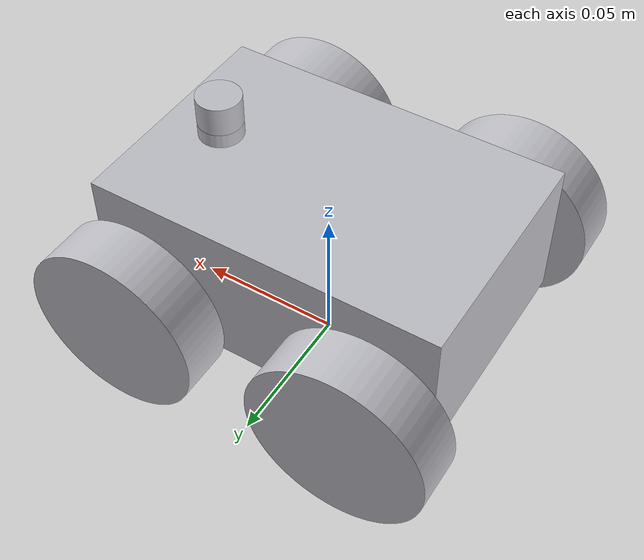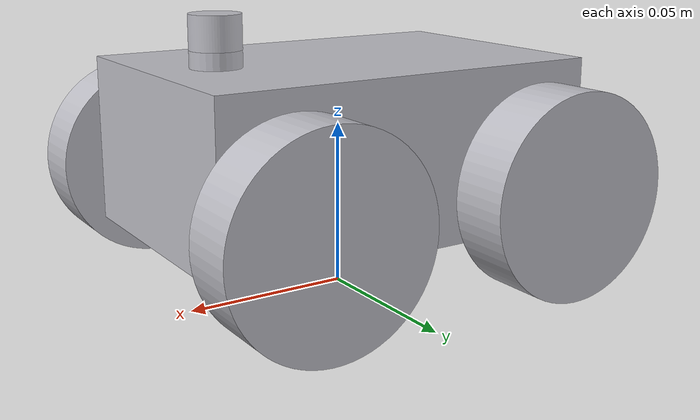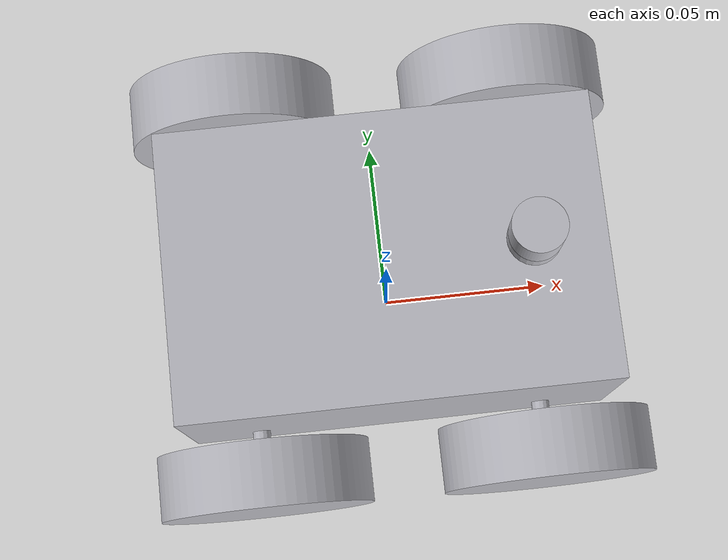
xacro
<?xml version="1.0" ?>
<robot name="test_bot" xmlns:xacro="http://www.ros.org/wiki/xacro">

<xacro:include filename="$(find test_bot_description)/urdf/materials.xacro" />
<xacro:include filename="$(find test_bot_description)/urdf/test_bot.trans" />
<xacro:include filename="$(find test_bot_description)/urdf/test_bot.gazebo" />
<link name="base_link">
  <inertial>
    <origin xyz="7.34358193300965e-05 0.0 0.04504232759030028" rpy="0 0 0"/>
    <mass value="3.7780187353218353"/>
    <inertia ixx="0.002806" iyy="0.005328" izz="0.006553" ixy="0.0" iyz="0.0" ixz="-8e-06"/>
  </inertial>
  <visual>
    <origin xyz="0 0 0" rpy="0 0 0"/>
    <geometry>
      <mesh filename="package://test_bot_description/meshes/base_link.stl" scale="0.001 0.001 0.001"/>
    </geometry>
    <material name="silver"/>
  </visual>
  <collision>
    <origin xyz="0 0 0" rpy="0 0 0"/>
    <geometry>
      <mesh filename="package://test_bot_description/meshes/base_link.stl" scale="0.001 0.001 0.001"/>
    </geometry>
  </collision>
</link>

<link name="right_back_wheel_1">
  <inertial>
    <origin xyz="-6.938893903907228e-18 0.008999999999999994 6.938893903907228e-18" rpy="0 0 0"/>
    <mass value="0.3995163377570139"/>
    <inertia ixx="0.000101" iyy="0.00018" izz="0.000101" ixy="0.0" iyz="-0.0" ixz="-0.0"/>
  </inertial>
  <visual>
    <origin xyz="0.04 -0.045 -0.035" rpy="0 0 0"/>
    <geometry>
      <mesh filename="package://test_bot_description/meshes/right_back_wheel_1.stl" scale="0.001 0.001 0.001"/>
    </geometry>
    <material name="silver"/>
  </visual>
  <collision>
    <origin xyz="0.04 -0.045 -0.035" rpy="0 0 0"/>
    <geometry>
      <mesh filename="package://test_bot_description/meshes/right_back_wheel_1.stl" scale="0.001 0.001 0.001"/>
    </geometry>
  </collision>
</link>

<link name="right_front_wheel_1">
  <inertial>
    <origin xyz="-6.938893903907228e-18 0.008999999999999994 0.0" rpy="0 0 0"/>
    <mass value="0.39951633775701406"/>
    <inertia ixx="0.000101" iyy="0.00018" izz="0.000101" ixy="-0.0" iyz="0.0" ixz="0.0"/>
  </inertial>
  <visual>
    <origin xyz="-0.04 -0.045 -0.035" rpy="0 0 0"/>
    <geometry>
      <mesh filename="package://test_bot_description/meshes/right_front_wheel_1.stl" scale="0.001 0.001 0.001"/>
    </geometry>
    <material name="silver"/>
  </visual>
  <collision>
    <origin xyz="-0.04 -0.045 -0.035" rpy="0 0 0"/>
    <geometry>
      <mesh filename="package://test_bot_description/meshes/right_front_wheel_1.stl" scale="0.001 0.001 0.001"/>
    </geometry>
  </collision>
</link>

<link name="left_front_wheel_1">
  <inertial>
    <origin xyz="-6.938893903907228e-18 -0.008999999999999994 0.0" rpy="0 0 0"/>
    <mass value="0.39951633775701406"/>
    <inertia ixx="0.000101" iyy="0.00018" izz="0.000101" ixy="0.0" iyz="0.0" ixz="0.0"/>
  </inertial>
  <visual>
    <origin xyz="-0.04 0.045 -0.035" rpy="0 0 0"/>
    <geometry>
      <mesh filename="package://test_bot_description/meshes/left_front_wheel_1.stl" scale="0.001 0.001 0.001"/>
    </geometry>
    <material name="silver"/>
  </visual>
  <collision>
    <origin xyz="-0.04 0.045 -0.035" rpy="0 0 0"/>
    <geometry>
      <mesh filename="package://test_bot_description/meshes/left_front_wheel_1.stl" scale="0.001 0.001 0.001"/>
    </geometry>
  </collision>
</link>

<link name="left_back_wheel_1">
  <inertial>
    <origin xyz="-6.938893903907228e-18 -0.008999999999999994 6.938893903907228e-18" rpy="0 0 0"/>
    <mass value="0.3995163377570139"/>
    <inertia ixx="0.000101" iyy="0.00018" izz="0.000101" ixy="-0.0" iyz="0.0" ixz="-0.0"/>
  </inertial>
  <visual>
    <origin xyz="0.04 0.045 -0.035" rpy="0 0 0"/>
    <geometry>
      <mesh filename="package://test_bot_description/meshes/left_back_wheel_1.stl" scale="0.001 0.001 0.001"/>
    </geometry>
    <material name="silver"/>
  </visual>
  <collision>
    <origin xyz="0.04 0.045 -0.035" rpy="0 0 0"/>
    <geometry>
      <mesh filename="package://test_bot_description/meshes/left_back_wheel_1.stl" scale="0.001 0.001 0.001"/>
    </geometry>
  </collision>
</link>

<link name="lidar_1">
  <inertial>
    <origin xyz="0.0 -1.2565154297139815e-18 0.0050000000000000044" rpy="0 0 0"/>
    <mass value="0.013872095061007433"/>
    <inertia ixx="0.0" iyy="0.0" izz="0.0" ixy="-0.0" iyz="0.0" ixz="0.0"/>
  </inertial>
  <visual>
    <origin xyz="-0.04 -0.0 -0.075" rpy="0 0 0"/>
    <geometry>
      <mesh filename="package://test_bot_description/meshes/lidar_1.stl" scale="0.001 0.001 0.001"/>
    </geometry>
    <material name="silver"/>
  </visual>
  <collision>
    <origin xyz="-0.04 -0.0 -0.075" rpy="0 0 0"/>
    <geometry>
      <mesh filename="package://test_bot_description/meshes/lidar_1.stl" scale="0.001 0.001 0.001"/>
    </geometry>
  </collision>
</link>

<joint name="Rev1" type="continuous">
  <origin xyz="-0.04 0.045 0.035" rpy="0 0 0"/>
  <parent link="base_link"/>
  <child link="right_back_wheel_1"/>
  <axis xyz="0.0 1.0 0.0"/>
</joint>

<joint name="Rev2" type="continuous">
  <origin xyz="0.04 0.045 0.035" rpy="0 0 0"/>
  <parent link="base_link"/>
  <child link="right_front_wheel_1"/>
  <axis xyz="0.0 1.0 0.0"/>
</joint>

<joint name="Rev3" type="continuous">
  <origin xyz="0.04 -0.045 0.035" rpy="0 0 0"/>
  <parent link="base_link"/>
  <child link="left_front_wheel_1"/>
  <axis xyz="0.0 -1.0 0.0"/>
</joint>

<joint name="Rev4" type="continuous">
  <origin xyz="-0.04 -0.045 0.035" rpy="0 0 0"/>
  <parent link="base_link"/>
  <child link="left_back_wheel_1"/>
  <axis xyz="0.0 -1.0 0.0"/>
</joint>

<joint name="Rigid5" type="fixed">
  <origin xyz="0.04 0.0 0.075" rpy="0 0 0"/>
  <parent link="base_link"/>
  <child link="lidar_1"/>
</joint>

</robot>

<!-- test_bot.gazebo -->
<robot name="test_bot" xmlns:xacro="http://www.ros.org/wiki/xacro" >

<xacro:property name="body_color" value="Gazebo/Silver" />

<gazebo>
  <plugin name="control" filename="libgazebo_ros_control.so"/>
</gazebo>
<gazebo reference="base_link">
  <material>${body_color}</material>
  <mu1>0.2</mu1>
  <mu2>0.2</mu2>
  <selfCollide>true</selfCollide>
  <gravity>true</gravity>
</gazebo>

<gazebo reference="right_back_wheel_1">
  <material>${body_color}</material>
  <mu1>0.2</mu1>
  <mu2>0.2</mu2>
  <selfCollide>true</selfCollide>
</gazebo>

<gazebo reference="right_front_wheel_1">
  <material>${body_color}</material>
  <mu1>0.2</mu1>
  <mu2>0.2</mu2>
  <selfCollide>true</selfCollide>
</gazebo>

<gazebo reference="left_front_wheel_1">
  <material>${body_color}</material>
  <mu1>0.2</mu1>
  <mu2>0.2</mu2>
  <selfCollide>true</selfCollide>
</gazebo>

<gazebo reference="left_back_wheel_1">
  <material>${body_color}</material>
  <mu1>0.2</mu1>
  <mu2>0.2</mu2>
  <selfCollide>true</selfCollide>
</gazebo>

<gazebo reference="lidar_1">
  <material>${body_color}</material>
  <mu1>0.2</mu1>
  <mu2>0.2</mu2>
  <selfCollide>true</selfCollide>
</gazebo>

</robot>
